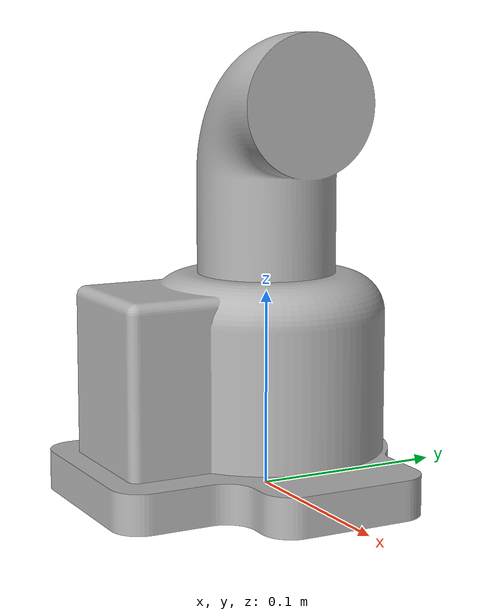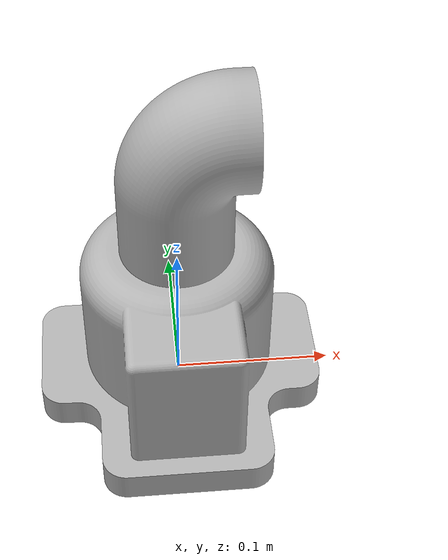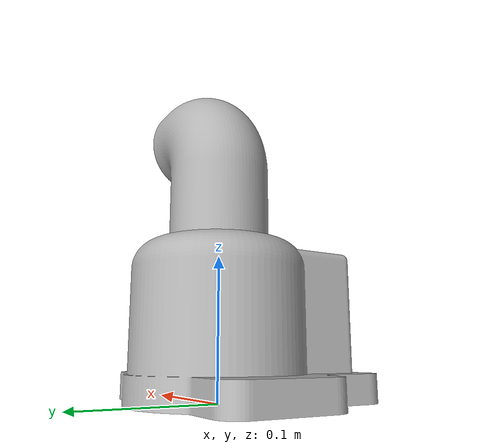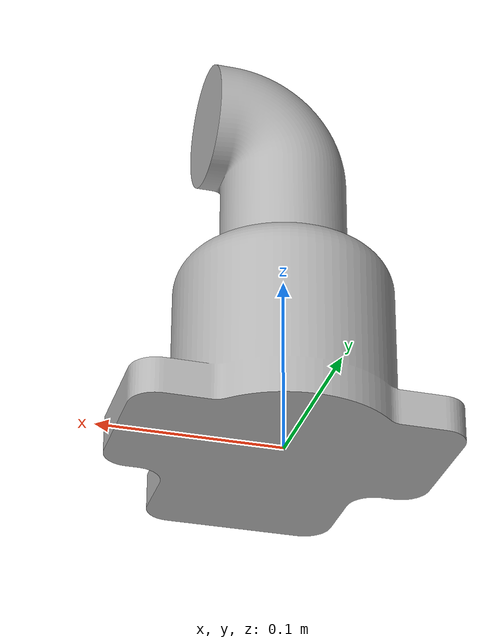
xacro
<?xml version="1.0" ?>
<robot name="mycobot111" xmlns:xacro="http://www.ros.org/wiki/xacro">

<xacro:include filename="$(find mycobot111_description)/urdf/materials.xacro" />
<xacro:include filename="$(find mycobot111_description)/urdf/mycobot111.trans" />
<xacro:include filename="$(find mycobot111_description)/urdf/mycobot111.gazebo" />
<link name="base_link">
  <inertial>
    <origin xyz="-1.3994637957346424e-08 -0.013751224256395762 0.04886454507234413" rpy="0 0 0"/>
    <mass value="12.899764355948896"/>
    <inertia ixx="0.033823" iyy="0.028162" izz="0.035033" ixy="0.0" iyz="-0.000755" ixz="0.0"/>
  </inertial>
  <visual>
    <origin xyz="0 0 0" rpy="0 0 0"/>
    <geometry>
      <mesh filename="file://$(find mycobot111_description)/meshes/base_link.stl" scale="0.001 0.001 0.001"/>
    </geometry>
    <material name="silver"/>
  </visual>
  <collision>
    <origin xyz="0 0 0" rpy="0 0 0"/>
    <geometry>
      <mesh filename="file://$(find mycobot111_description)/meshes/base_link.stl" scale="0.001 0.001 0.001"/>
    </geometry>
  </collision>
</link>

<link name="link1_1">
  <inertial>
    <origin xyz="0.006896766224730428 4.7445558334983536e-17 0.055490186869056476" rpy="0 0 0"/>
    <mass value="3.4735206294395446"/>
    <inertia ixx="0.004461" iyy="0.004757" izz="0.002424" ixy="-0.0" iyz="0.0" ixz="-0.000777"/>
  </inertial>
  <visual>
    <origin xyz="-0.0 -0.0 -0.11" rpy="0 0 0"/>
    <geometry>
      <mesh filename="file://$(find mycobot111_description)/meshes/link1_1.stl" scale="0.001 0.001 0.001"/>
    </geometry>
    <material name="silver"/>
  </visual>
  <collision>
    <origin xyz="-0.0 -0.0 -0.11" rpy="0 0 0"/>
    <geometry>
      <mesh filename="file://$(find mycobot111_description)/meshes/link1_1.stl" scale="0.001 0.001 0.001"/>
    </geometry>
  </collision>
</link>

<joint name="joint1" type="continuous">
  <origin xyz="0.0 0.0 0.11" rpy="0 0 0"/>
  <parent link="base_link"/>
  <child link="link1_1"/>
  <axis xyz="0.0 0.0 1.0"/>
</joint>

</robot>

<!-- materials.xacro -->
<robot name="mycobot111" xmlns:xacro="http://www.ros.org/wiki/xacro" >

<material name="silver">
  <color rgba="0.700 0.700 0.700 1.000"/>
</material>

</robot>

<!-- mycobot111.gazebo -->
<robot name="mycobot111" xmlns:xacro="http://www.ros.org/wiki/xacro" >

<xacro:property name="body_color" value="Gazebo/Silver" />

<gazebo>
  <plugin name="control" filename="libgazebo_ros_control.so"/>
</gazebo>
<gazebo reference="base_link">
  <material>${body_color}</material>
  <mu1>0.2</mu1>
  <mu2>0.2</mu2>
  <self_collide>true</self_collide>
  <gravity>true</gravity>
</gazebo>

<gazebo reference="link1_1">
  <material>${body_color}</material>
  <mu1>0.2</mu1>
  <mu2>0.2</mu2>
  <self_collide>true</self_collide>
</gazebo>

</robot>
